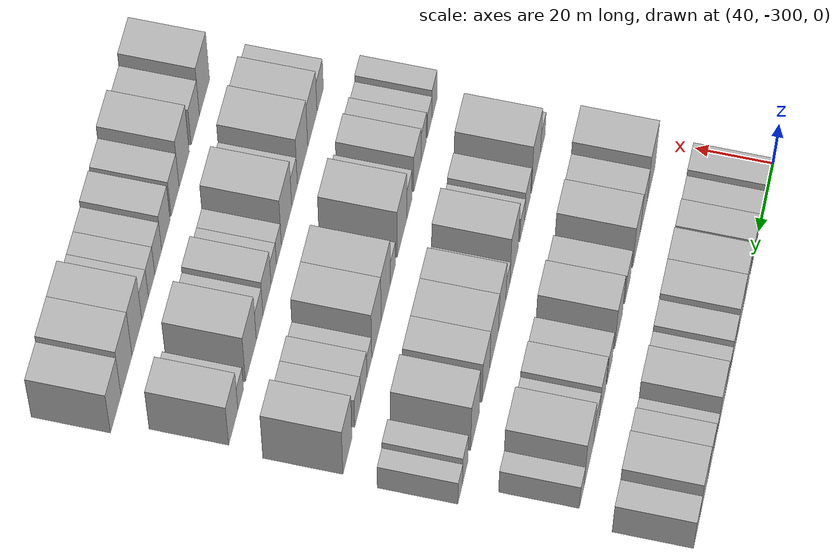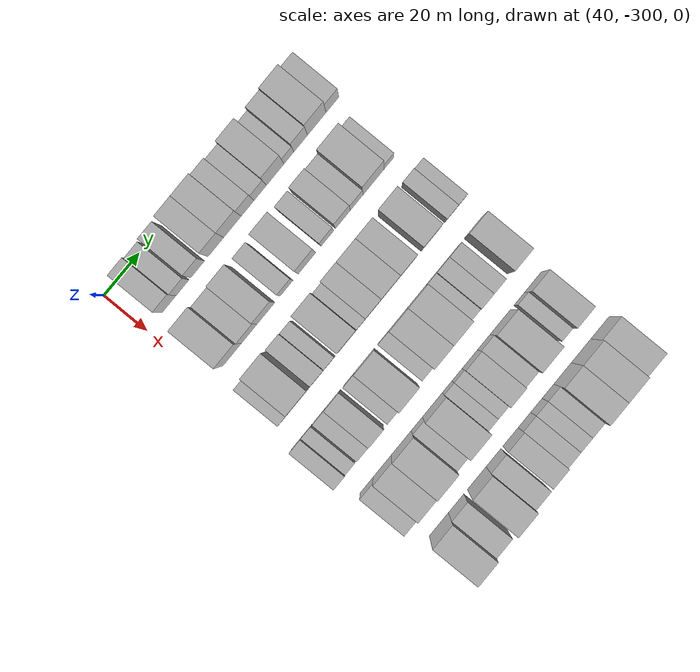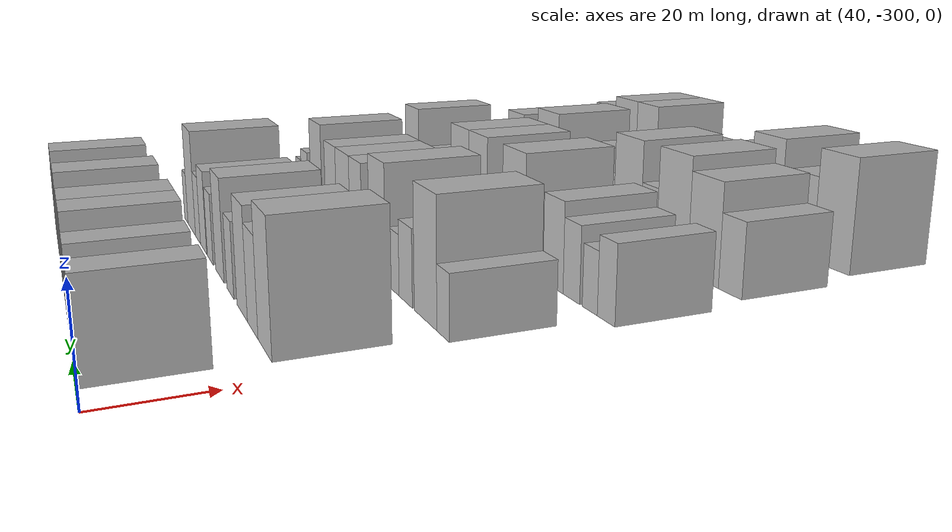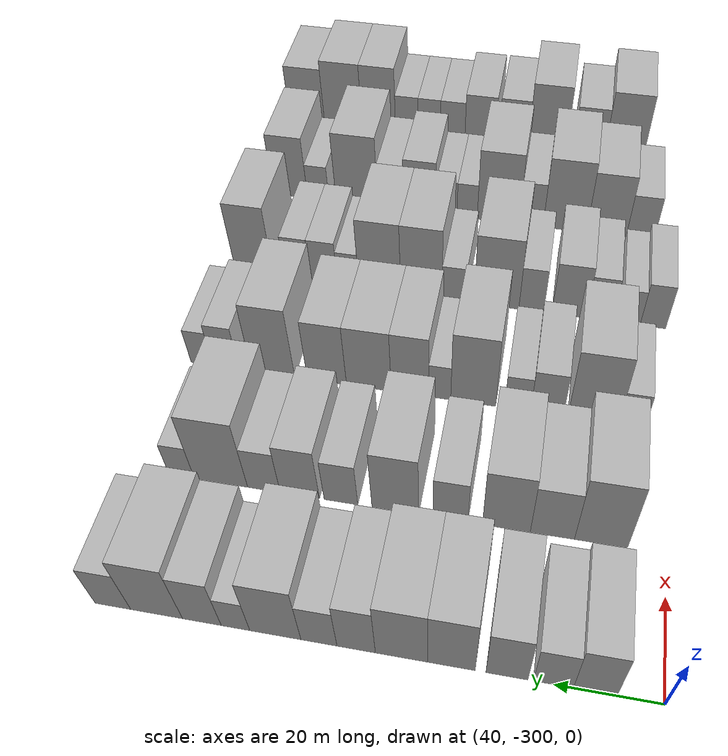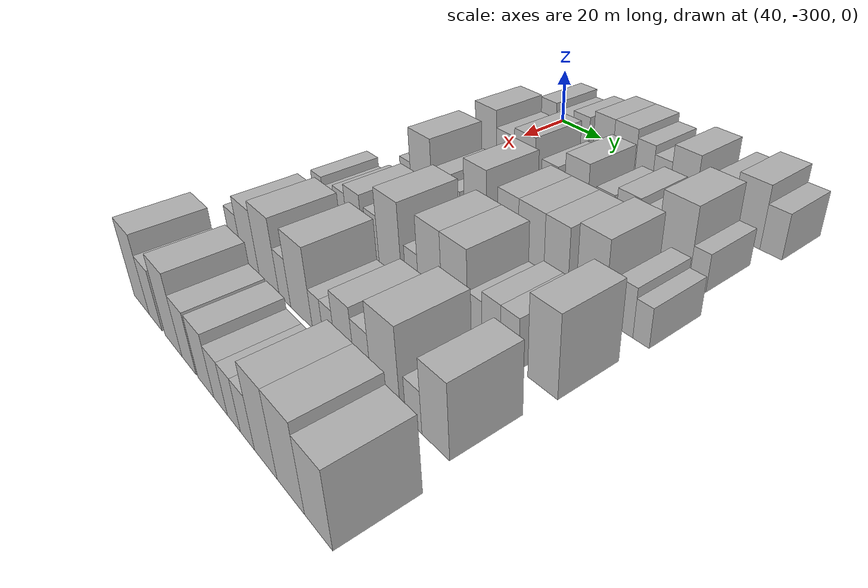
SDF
<sdf version="1.6">
 <world name="default">
  <model name="building_26">
   <static>1</static>
   <pose>50.0000 -287.5092 0 0.000000 0.000000 0.000000</pose>
   <link name="link">
    <pose>0 0 9.00 0 0 0</pose>
    <collision name="collision"><geometry><box><size>20.0000 7.8925 18.0000</size></box></geometry></collision>
    <visual name="visual">
     <cast_shadows>0</cast_shadows>
     <geometry><box><size>20.0000 7.8925 18.0000</size></box></geometry>
     <material>
      <script>
       <uri>model://HANNAS_wall/materials/scripts</uri>
       <uri>model://HANNAS_wall/materials/textures</uri>
       <name>vrc/HANNAS_wall</name>
      </script>
     </material>
    </visual>
   </link>
  </model>
  <model name="building_27">
   <static>1</static>
   <pose>50.0000 -279.9072 0 0.000000 0.000000 0.000000</pose>
   <link name="link">
    <pose>0 0 7.50 0 0 0</pose>
    <collision name="collision"><geometry><box><size>20.0000 7.3117 15.0000</size></box></geometry></collision>
    <visual name="visual">
     <cast_shadows>0</cast_shadows>
     <geometry><box><size>20.0000 7.3117 15.0000</size></box></geometry>
     <material>
      <script>
       <uri>model://HANNAS_wall/materials/scripts</uri>
       <uri>model://HANNAS_wall/materials/textures</uri>
       <name>vrc/HANNAS_wall</name>
      </script>
     </material>
    </visual>
   </link>
  </model>
  <model name="building_28">
   <static>1</static>
   <pose>50.0000 -271.3781 0 0.000000 0.000000 0.000000</pose>
   <link name="link">
    <pose>0 0 9.00 0 0 0</pose>
    <collision name="collision"><geometry><box><size>20.0000 7.7464 18.0000</size></box></geometry></collision>
    <visual name="visual">
     <cast_shadows>0</cast_shadows>
     <geometry><box><size>20.0000 7.7464 18.0000</size></box></geometry>
     <material>
      <script>
       <uri>model://HANNAS_wall/materials/scripts</uri>
       <uri>model://HANNAS_wall/materials/textures</uri>
       <name>vrc/HANNAS_wall</name>
      </script>
     </material>
    </visual>
   </link>
  </model>
  <model name="building_29">
   <static>1</static>
   <pose>50.0000 -261.0424 0 0.000000 0.000000 0.000000</pose>
   <link name="link">
    <pose>0 0 10.50 0 0 0</pose>
    <collision name="collision"><geometry><box><size>20.0000 8.9250 21.0000</size></box></geometry></collision>
    <visual name="visual">
     <cast_shadows>0</cast_shadows>
     <geometry><box><size>20.0000 8.9250 21.0000</size></box></geometry>
     <material>
      <script>
       <uri>model://HANNAS_wall/materials/scripts</uri>
       <uri>model://HANNAS_wall/materials/textures</uri>
       <name>vrc/HANNAS_wall</name>
      </script>
     </material>
    </visual>
   </link>
  </model>
  <model name="building_30">
   <static>1</static>
   <pose>50.0000 -251.6607 0 0.000000 0.000000 0.000000</pose>
   <link name="link">
    <pose>0 0 10.50 0 0 0</pose>
    <collision name="collision"><geometry><box><size>20.0000 9.8384 21.0000</size></box></geometry></collision>
    <visual name="visual">
     <cast_shadows>0</cast_shadows>
     <geometry><box><size>20.0000 9.8384 21.0000</size></box></geometry>
     <material>
      <script>
       <uri>model://HANNAS_wall/materials/scripts</uri>
       <uri>model://HANNAS_wall/materials/textures</uri>
       <name>vrc/HANNAS_wall</name>
      </script>
     </material>
    </visual>
   </link>
  </model>
  <model name="building_31">
   <static>1</static>
   <pose>50.0000 -243.0680 0 0.000000 0.000000 0.000000</pose>
   <link name="link">
    <pose>0 0 9.00 0 0 0</pose>
    <collision name="collision"><geometry><box><size>20.0000 7.3471 18.0000</size></box></geometry></collision>
    <visual name="visual">
     <cast_shadows>0</cast_shadows>
     <geometry><box><size>20.0000 7.3471 18.0000</size></box></geometry>
     <material>
      <script>
       <uri>model://HANNAS_wall/materials/scripts</uri>
       <uri>model://HANNAS_wall/materials/textures</uri>
       <name>vrc/HANNAS_wall</name>
      </script>
     </material>
    </visual>
   </link>
  </model>
  <model name="building_32">
   <static>1</static>
   <pose>50.0000 -235.9176 0 0.000000 0.000000 0.000000</pose>
   <link name="link">
    <pose>0 0 7.50 0 0 0</pose>
    <collision name="collision"><geometry><box><size>20.0000 6.9537 15.0000</size></box></geometry></collision>
    <visual name="visual">
     <cast_shadows>0</cast_shadows>
     <geometry><box><size>20.0000 6.9537 15.0000</size></box></geometry>
     <material>
      <script>
       <uri>model://HANNAS_wall/materials/scripts</uri>
       <uri>model://HANNAS_wall/materials/textures</uri>
       <name>vrc/HANNAS_wall</name>
      </script>
     </material>
    </visual>
   </link>
  </model>
  <model name="building_33">
   <static>1</static>
   <pose>50.0000 -227.4500 0 0.000000 0.000000 0.000000</pose>
   <link name="link">
    <pose>0 0 10.50 0 0 0</pose>
    <collision name="collision"><geometry><box><size>20.0000 9.9816 21.0000</size></box></geometry></collision>
    <visual name="visual">
     <cast_shadows>0</cast_shadows>
     <geometry><box><size>20.0000 9.9816 21.0000</size></box></geometry>
     <material>
      <script>
       <uri>model://HANNAS_wall/materials/scripts</uri>
       <uri>model://HANNAS_wall/materials/textures</uri>
       <name>vrc/HANNAS_wall</name>
      </script>
     </material>
    </visual>
   </link>
  </model>
  <model name="building_34">
   <static>1</static>
   <pose>50.0000 -219.6462 0 0.000000 0.000000 0.000000</pose>
   <link name="link">
    <pose>0 0 6.00 0 0 0</pose>
    <collision name="collision"><geometry><box><size>20.0000 5.6259 12.0000</size></box></geometry></collision>
    <visual name="visual">
     <cast_shadows>0</cast_shadows>
     <geometry><box><size>20.0000 5.6259 12.0000</size></box></geometry>
     <material>
      <script>
       <uri>model://HANNAS_wall/materials/scripts</uri>
       <uri>model://HANNAS_wall/materials/textures</uri>
       <name>vrc/HANNAS_wall</name>
      </script>
     </material>
    </visual>
   </link>
  </model>
  <model name="building_35">
   <static>1</static>
   <pose>50.0000 -212.9901 0 0.000000 0.000000 0.000000</pose>
   <link name="link">
    <pose>0 0 9.00 0 0 0</pose>
    <collision name="collision"><geometry><box><size>20.0000 7.6864 18.0000</size></box></geometry></collision>
    <visual name="visual">
     <cast_shadows>0</cast_shadows>
     <geometry><box><size>20.0000 7.6864 18.0000</size></box></geometry>
     <material>
      <script>
       <uri>model://HANNAS_wall/materials/scripts</uri>
       <uri>model://HANNAS_wall/materials/textures</uri>
       <name>vrc/HANNAS_wall</name>
      </script>
     </material>
    </visual>
   </link>
  </model>
  <model name="building_36">
   <static>1</static>
   <pose>50.0000 -203.9305 0 0.000000 0.000000 0.000000</pose>
   <link name="link">
    <pose>0 0 10.50 0 0 0</pose>
    <collision name="collision"><geometry><box><size>20.0000 10.4330 21.0000</size></box></geometry></collision>
    <visual name="visual">
     <cast_shadows>0</cast_shadows>
     <geometry><box><size>20.0000 10.4330 21.0000</size></box></geometry>
     <material>
      <script>
       <uri>model://HANNAS_wall/materials/scripts</uri>
       <uri>model://HANNAS_wall/materials/textures</uri>
       <name>vrc/HANNAS_wall</name>
      </script>
     </material>
    </visual>
   </link>
  </model>
  <model name="building_37">
   <static>1</static>
   <pose>50.0000 -195.0997 0 0.000000 0.000000 0.000000</pose>
   <link name="link">
    <pose>0 0 7.50 0 0 0</pose>
    <collision name="collision"><geometry><box><size>20.0000 7.2284 15.0000</size></box></geometry></collision>
    <visual name="visual">
     <cast_shadows>0</cast_shadows>
     <geometry><box><size>20.0000 7.2284 15.0000</size></box></geometry>
     <material>
      <script>
       <uri>model://HANNAS_wall/materials/scripts</uri>
       <uri>model://HANNAS_wall/materials/textures</uri>
       <name>vrc/HANNAS_wall</name>
      </script>
     </material>
    </visual>
   </link>
  </model>
  <model name="building_143">
   <static>1</static>
   <pose>79.0000 -287.1004 0 0.000000 0.000000 0.000000</pose>
   <link name="link">
    <pose>0 0 12.00 0 0 0</pose>
    <collision name="collision"><geometry><box><size>20.0000 10.6587 24.0000</size></box></geometry></collision>
    <visual name="visual">
     <cast_shadows>0</cast_shadows>
     <geometry><box><size>20.0000 10.6587 24.0000</size></box></geometry>
     <material>
      <script>
       <uri>model://HANNAS_wall/materials/scripts</uri>
       <uri>model://HANNAS_wall/materials/textures</uri>
       <name>vrc/HANNAS_wall</name>
      </script>
     </material>
    </visual>
   </link>
  </model>
  <model name="building_144">
   <static>1</static>
   <pose>79.0000 -277.2803 0 0.000000 0.000000 0.000000</pose>
   <link name="link">
    <pose>0 0 9.00 0 0 0</pose>
    <collision name="collision"><geometry><box><size>20.0000 8.9815 18.0000</size></box></geometry></collision>
    <visual name="visual">
     <cast_shadows>0</cast_shadows>
     <geometry><box><size>20.0000 8.9815 18.0000</size></box></geometry>
     <material>
      <script>
       <uri>model://HANNAS_wall/materials/scripts</uri>
       <uri>model://HANNAS_wall/materials/textures</uri>
       <name>vrc/HANNAS_wall</name>
      </script>
     </material>
    </visual>
   </link>
  </model>
  <model name="building_145">
   <static>1</static>
   <pose>79.0000 -267.8952 0 0.000000 0.000000 0.000000</pose>
   <link name="link">
    <pose>0 0 10.50 0 0 0</pose>
    <collision name="collision"><geometry><box><size>20.0000 9.7886 21.0000</size></box></geometry></collision>
    <visual name="visual">
     <cast_shadows>0</cast_shadows>
     <geometry><box><size>20.0000 9.7886 21.0000</size></box></geometry>
     <material>
      <script>
       <uri>model://HANNAS_wall/materials/scripts</uri>
       <uri>model://HANNAS_wall/materials/textures</uri>
       <name>vrc/HANNAS_wall</name>
      </script>
     </material>
    </visual>
   </link>
  </model>
  <model name="building_146">
   <static>1</static>
   <pose>79.0000 -256.3727 0 0.000000 0.000000 0.000000</pose>
   <link name="link">
    <pose>0 0 7.50 0 0 0</pose>
    <collision name="collision"><geometry><box><size>20.0000 7.2565 15.0000</size></box></geometry></collision>
    <visual name="visual">
     <cast_shadows>0</cast_shadows>
     <geometry><box><size>20.0000 7.2565 15.0000</size></box></geometry>
     <material>
      <script>
       <uri>model://HANNAS_wall/materials/scripts</uri>
       <uri>model://HANNAS_wall/materials/textures</uri>
       <name>vrc/HANNAS_wall</name>
      </script>
     </material>
    </visual>
   </link>
  </model>
  <model name="building_147">
   <static>1</static>
   <pose>79.0000 -244.8268 0 0.000000 0.000000 0.000000</pose>
   <link name="link">
    <pose>0 0 10.50 0 0 0</pose>
    <collision name="collision"><geometry><box><size>20.0000 9.8353 21.0000</size></box></geometry></collision>
    <visual name="visual">
     <cast_shadows>0</cast_shadows>
     <geometry><box><size>20.0000 9.8353 21.0000</size></box></geometry>
     <material>
      <script>
       <uri>model://HANNAS_wall/materials/scripts</uri>
       <uri>model://HANNAS_wall/materials/textures</uri>
       <name>vrc/HANNAS_wall</name>
      </script>
     </material>
    </visual>
   </link>
  </model>
  <model name="building_148">
   <static>1</static>
   <pose>79.0000 -233.3173 0 0.000000 0.000000 0.000000</pose>
   <link name="link">
    <pose>0 0 7.50 0 0 0</pose>
    <collision name="collision"><geometry><box><size>20.0000 7.1836 15.0000</size></box></geometry></collision>
    <visual name="visual">
     <cast_shadows>0</cast_shadows>
     <geometry><box><size>20.0000 7.1836 15.0000</size></box></geometry>
     <material>
      <script>
       <uri>model://HANNAS_wall/materials/scripts</uri>
       <uri>model://HANNAS_wall/materials/textures</uri>
       <name>vrc/HANNAS_wall</name>
      </script>
     </material>
    </visual>
   </link>
  </model>
  <model name="building_149">
   <static>1</static>
   <pose>79.0000 -224.4920 0 0.000000 0.000000 0.000000</pose>
   <link name="link">
    <pose>0 0 9.00 0 0 0</pose>
    <collision name="collision"><geometry><box><size>20.0000 8.4671 18.0000</size></box></geometry></collision>
    <visual name="visual">
     <cast_shadows>0</cast_shadows>
     <geometry><box><size>20.0000 8.4671 18.0000</size></box></geometry>
     <material>
      <script>
       <uri>model://HANNAS_wall/materials/scripts</uri>
       <uri>model://HANNAS_wall/materials/textures</uri>
       <name>vrc/HANNAS_wall</name>
      </script>
     </material>
    </visual>
   </link>
  </model>
  <model name="building_150">
   <static>1</static>
   <pose>79.0000 -216.7056 0 0.000000 0.000000 0.000000</pose>
   <link name="link">
    <pose>0 0 7.50 0 0 0</pose>
    <collision name="collision"><geometry><box><size>20.0000 7.1057 15.0000</size></box></geometry></collision>
    <visual name="visual">
     <cast_shadows>0</cast_shadows>
     <geometry><box><size>20.0000 7.1057 15.0000</size></box></geometry>
     <material>
      <script>
       <uri>model://HANNAS_wall/materials/scripts</uri>
       <uri>model://HANNAS_wall/materials/textures</uri>
       <name>vrc/HANNAS_wall</name>
      </script>
     </material>
    </visual>
   </link>
  </model>
  <model name="building_151">
   <static>1</static>
   <pose>79.0000 -207.3092 0 0.000000 0.000000 0.000000</pose>
   <link name="link">
    <pose>0 0 12.00 0 0 0</pose>
    <collision name="collision"><geometry><box><size>20.0000 11.6872 24.0000</size></box></geometry></collision>
    <visual name="visual">
     <cast_shadows>0</cast_shadows>
     <geometry><box><size>20.0000 11.6872 24.0000</size></box></geometry>
     <material>
      <script>
       <uri>model://HANNAS_wall/materials/scripts</uri>
       <uri>model://HANNAS_wall/materials/textures</uri>
       <name>vrc/HANNAS_wall</name>
      </script>
     </material>
    </visual>
   </link>
  </model>
  <model name="building_152">
   <static>1</static>
   <pose>79.0000 -198.6663 0 0.000000 0.000000 0.000000</pose>
   <link name="link">
    <pose>0 0 6.00 0 0 0</pose>
    <collision name="collision"><geometry><box><size>20.0000 5.5985 12.0000</size></box></geometry></collision>
    <visual name="visual">
     <cast_shadows>0</cast_shadows>
     <geometry><box><size>20.0000 5.5985 12.0000</size></box></geometry>
     <material>
      <script>
       <uri>model://HANNAS_wall/materials/scripts</uri>
       <uri>model://HANNAS_wall/materials/textures</uri>
       <name>vrc/HANNAS_wall</name>
      </script>
     </material>
    </visual>
   </link>
  </model>
  <model name="building_255">
   <static>1</static>
   <pose>108.0000 -292.4442 0 0.000000 0.000000 0.000000</pose>
   <link name="link">
    <pose>0 0 6.00 0 0 0</pose>
    <collision name="collision"><geometry><box><size>20.0000 5.7419 12.0000</size></box></geometry></collision>
    <visual name="visual">
     <cast_shadows>0</cast_shadows>
     <geometry><box><size>20.0000 5.7419 12.0000</size></box></geometry>
     <material>
      <script>
       <uri>model://HANNAS_wall/materials/scripts</uri>
       <uri>model://HANNAS_wall/materials/textures</uri>
       <name>vrc/HANNAS_wall</name>
      </script>
     </material>
    </visual>
   </link>
  </model>
  <model name="building_256">
   <static>1</static>
   <pose>108.0000 -283.9402 0 0.000000 0.000000 0.000000</pose>
   <link name="link">
    <pose>0 0 12.00 0 0 0</pose>
    <collision name="collision"><geometry><box><size>20.0000 11.2659 24.0000</size></box></geometry></collision>
    <visual name="visual">
     <cast_shadows>0</cast_shadows>
     <geometry><box><size>20.0000 11.2659 24.0000</size></box></geometry>
     <material>
      <script>
       <uri>model://HANNAS_wall/materials/scripts</uri>
       <uri>model://HANNAS_wall/materials/textures</uri>
       <name>vrc/HANNAS_wall</name>
      </script>
     </material>
    </visual>
   </link>
  </model>
  <model name="building_257">
   <static>1</static>
   <pose>108.0000 -273.6493 0 0.000000 0.000000 0.000000</pose>
   <link name="link">
    <pose>0 0 7.50 0 0 0</pose>
    <collision name="collision"><geometry><box><size>20.0000 7.3159 15.0000</size></box></geometry></collision>
    <visual name="visual">
     <cast_shadows>0</cast_shadows>
     <geometry><box><size>20.0000 7.3159 15.0000</size></box></geometry>
     <material>
      <script>
       <uri>model://HANNAS_wall/materials/scripts</uri>
       <uri>model://HANNAS_wall/materials/textures</uri>
       <name>vrc/HANNAS_wall</name>
      </script>
     </material>
    </visual>
   </link>
  </model>
  <model name="building_258">
   <static>1</static>
   <pose>108.0000 -267.0643 0 0.000000 0.000000 0.000000</pose>
   <link name="link">
    <pose>0 0 6.00 0 0 0</pose>
    <collision name="collision"><geometry><box><size>20.0000 5.8540 12.0000</size></box></geometry></collision>
    <visual name="visual">
     <cast_shadows>0</cast_shadows>
     <geometry><box><size>20.0000 5.8540 12.0000</size></box></geometry>
     <material>
      <script>
       <uri>model://HANNAS_wall/materials/scripts</uri>
       <uri>model://HANNAS_wall/materials/textures</uri>
       <name>vrc/HANNAS_wall</name>
      </script>
     </material>
    </visual>
   </link>
  </model>
  <model name="building_259">
   <static>1</static>
   <pose>108.0000 -257.0201 0 0.000000 0.000000 0.000000</pose>
   <link name="link">
    <pose>0 0 12.00 0 0 0</pose>
    <collision name="collision"><geometry><box><size>20.0000 10.2344 24.0000</size></box></geometry></collision>
    <visual name="visual">
     <cast_shadows>0</cast_shadows>
     <geometry><box><size>20.0000 10.2344 24.0000</size></box></geometry>
     <material>
      <script>
       <uri>model://HANNAS_wall/materials/scripts</uri>
       <uri>model://HANNAS_wall/materials/textures</uri>
       <name>vrc/HANNAS_wall</name>
      </script>
     </material>
    </visual>
   </link>
  </model>
  <model name="building_260">
   <static>1</static>
   <pose>108.0000 -249.3793 0 0.000000 0.000000 0.000000</pose>
   <link name="link">
    <pose>0 0 6.00 0 0 0</pose>
    <collision name="collision"><geometry><box><size>20.0000 5.0472 12.0000</size></box></geometry></collision>
    <visual name="visual">
     <cast_shadows>0</cast_shadows>
     <geometry><box><size>20.0000 5.0472 12.0000</size></box></geometry>
     <material>
      <script>
       <uri>model://HANNAS_wall/materials/scripts</uri>
       <uri>model://HANNAS_wall/materials/textures</uri>
       <name>vrc/HANNAS_wall</name>
      </script>
     </material>
    </visual>
   </link>
  </model>
  <model name="building_261">
   <static>1</static>
   <pose>108.0000 -242.5426 0 0.000000 0.000000 0.000000</pose>
   <link name="link">
    <pose>0 0 10.50 0 0 0</pose>
    <collision name="collision"><geometry><box><size>20.0000 8.6262 21.0000</size></box></geometry></collision>
    <visual name="visual">
     <cast_shadows>0</cast_shadows>
     <geometry><box><size>20.0000 8.6262 21.0000</size></box></geometry>
     <material>
      <script>
       <uri>model://HANNAS_wall/materials/scripts</uri>
       <uri>model://HANNAS_wall/materials/textures</uri>
       <name>vrc/HANNAS_wall</name>
      </script>
     </material>
    </visual>
   </link>
  </model>
  <model name="building_262">
   <static>1</static>
   <pose>108.0000 -233.0010 0 0.000000 0.000000 0.000000</pose>
   <link name="link">
    <pose>0 0 10.50 0 0 0</pose>
    <collision name="collision"><geometry><box><size>20.0000 10.4570 21.0000</size></box></geometry></collision>
    <visual name="visual">
     <cast_shadows>0</cast_shadows>
     <geometry><box><size>20.0000 10.4570 21.0000</size></box></geometry>
     <material>
      <script>
       <uri>model://HANNAS_wall/materials/scripts</uri>
       <uri>model://HANNAS_wall/materials/textures</uri>
       <name>vrc/HANNAS_wall</name>
      </script>
     </material>
    </visual>
   </link>
  </model>
  <model name="building_263">
   <static>1</static>
   <pose>108.0000 -223.1698 0 0.000000 0.000000 0.000000</pose>
   <link name="link">
    <pose>0 0 10.50 0 0 0</pose>
    <collision name="collision"><geometry><box><size>20.0000 9.2053 21.0000</size></box></geometry></collision>
    <visual name="visual">
     <cast_shadows>0</cast_shadows>
     <geometry><box><size>20.0000 9.2053 21.0000</size></box></geometry>
     <material>
      <script>
       <uri>model://HANNAS_wall/materials/scripts</uri>
       <uri>model://HANNAS_wall/materials/textures</uri>
       <name>vrc/HANNAS_wall</name>
      </script>
     </material>
    </visual>
   </link>
  </model>
  <model name="building_264">
   <static>1</static>
   <pose>108.0000 -210.3973 0 0.000000 0.000000 0.000000</pose>
   <link name="link">
    <pose>0 0 12.00 0 0 0</pose>
    <collision name="collision"><geometry><box><size>20.0000 10.3398 24.0000</size></box></geometry></collision>
    <visual name="visual">
     <cast_shadows>0</cast_shadows>
     <geometry><box><size>20.0000 10.3398 24.0000</size></box></geometry>
     <material>
      <script>
       <uri>model://HANNAS_wall/materials/scripts</uri>
       <uri>model://HANNAS_wall/materials/textures</uri>
       <name>vrc/HANNAS_wall</name>
      </script>
     </material>
    </visual>
   </link>
  </model>
  <model name="building_265">
   <static>1</static>
   <pose>108.0000 -199.0351 0 0.000000 0.000000 0.000000</pose>
   <link name="link">
    <pose>0 0 7.50 0 0 0</pose>
    <collision name="collision"><geometry><box><size>20.0000 6.3846 15.0000</size></box></geometry></collision>
    <visual name="visual">
     <cast_shadows>0</cast_shadows>
     <geometry><box><size>20.0000 6.3846 15.0000</size></box></geometry>
     <material>
      <script>
       <uri>model://HANNAS_wall/materials/scripts</uri>
       <uri>model://HANNAS_wall/materials/textures</uri>
       <name>vrc/HANNAS_wall</name>
      </script>
     </material>
    </visual>
   </link>
  </model>
  <model name="building_266">
   <static>1</static>
   <pose>108.0000 -193.2231 0 0.000000 0.000000 0.000000</pose>
   <link name="link">
    <pose>0 0 6.00 0 0 0</pose>
    <collision name="collision"><geometry><box><size>20.0000 5.2395 12.0000</size></box></geometry></collision>
    <visual name="visual">
     <cast_shadows>0</cast_shadows>
     <geometry><box><size>20.0000 5.2395 12.0000</size></box></geometry>
     <material>
      <script>
       <uri>model://HANNAS_wall/materials/scripts</uri>
       <uri>model://HANNAS_wall/materials/textures</uri>
       <name>vrc/HANNAS_wall</name>
      </script>
     </material>
    </visual>
   </link>
  </model>
  <model name="building_368">
   <static>1</static>
   <pose>137.0000 -296.6412 0 0.000000 0.000000 0.000000</pose>
   <link name="link">
    <pose>0 0 7.50 0 0 0</pose>
    <collision name="collision"><geometry><box><size>20.0000 6.0902 15.0000</size></box></geometry></collision>
    <visual name="visual">
     <cast_shadows>0</cast_shadows>
     <geometry><box><size>20.0000 6.0902 15.0000</size></box></geometry>
     <material>
      <script>
       <uri>model://HANNAS_wall/materials/scripts</uri>
       <uri>model://HANNAS_wall/materials/textures</uri>
       <name>vrc/HANNAS_wall</name>
      </script>
     </material>
    </visual>
   </link>
  </model>
  <model name="building_369">
   <static>1</static>
   <pose>137.0000 -290.8589 0 0.000000 0.000000 0.000000</pose>
   <link name="link">
    <pose>0 0 6.00 0 0 0</pose>
    <collision name="collision"><geometry><box><size>20.0000 5.4744 12.0000</size></box></geometry></collision>
    <visual name="visual">
     <cast_shadows>0</cast_shadows>
     <geometry><box><size>20.0000 5.4744 12.0000</size></box></geometry>
     <material>
      <script>
       <uri>model://HANNAS_wall/materials/scripts</uri>
       <uri>model://HANNAS_wall/materials/textures</uri>
       <name>vrc/HANNAS_wall</name>
      </script>
     </material>
    </visual>
   </link>
  </model>
  <model name="building_370">
   <static>1</static>
   <pose>137.0000 -283.8934 0 0.000000 0.000000 0.000000</pose>
   <link name="link">
    <pose>0 0 7.50 0 0 0</pose>
    <collision name="collision"><geometry><box><size>20.0000 6.4567 15.0000</size></box></geometry></collision>
    <visual name="visual">
     <cast_shadows>0</cast_shadows>
     <geometry><box><size>20.0000 6.4567 15.0000</size></box></geometry>
     <material>
      <script>
       <uri>model://HANNAS_wall/materials/scripts</uri>
       <uri>model://HANNAS_wall/materials/textures</uri>
       <name>vrc/HANNAS_wall</name>
      </script>
     </material>
    </visual>
   </link>
  </model>
  <model name="building_371">
   <static>1</static>
   <pose>137.0000 -276.4920 0 0.000000 0.000000 0.000000</pose>
   <link name="link">
    <pose>0 0 9.00 0 0 0</pose>
    <collision name="collision"><geometry><box><size>20.0000 8.3462 18.0000</size></box></geometry></collision>
    <visual name="visual">
     <cast_shadows>0</cast_shadows>
     <geometry><box><size>20.0000 8.3462 18.0000</size></box></geometry>
     <material>
      <script>
       <uri>model://HANNAS_wall/materials/scripts</uri>
       <uri>model://HANNAS_wall/materials/textures</uri>
       <name>vrc/HANNAS_wall</name>
      </script>
     </material>
    </visual>
   </link>
  </model>
  <model name="building_372">
   <static>1</static>
   <pose>137.0000 -267.2804 0 0.000000 0.000000 0.000000</pose>
   <link name="link">
    <pose>0 0 7.50 0 0 0</pose>
    <collision name="collision"><geometry><box><size>20.0000 6.0770 15.0000</size></box></geometry></collision>
    <visual name="visual">
     <cast_shadows>0</cast_shadows>
     <geometry><box><size>20.0000 6.0770 15.0000</size></box></geometry>
     <material>
      <script>
       <uri>model://HANNAS_wall/materials/scripts</uri>
       <uri>model://HANNAS_wall/materials/textures</uri>
       <name>vrc/HANNAS_wall</name>
      </script>
     </material>
    </visual>
   </link>
  </model>
  <model name="building_373">
   <static>1</static>
   <pose>137.0000 -258.7001 0 0.000000 0.000000 0.000000</pose>
   <link name="link">
    <pose>0 0 12.00 0 0 0</pose>
    <collision name="collision"><geometry><box><size>20.0000 11.0838 24.0000</size></box></geometry></collision>
    <visual name="visual">
     <cast_shadows>0</cast_shadows>
     <geometry><box><size>20.0000 11.0838 24.0000</size></box></geometry>
     <material>
      <script>
       <uri>model://HANNAS_wall/materials/scripts</uri>
       <uri>model://HANNAS_wall/materials/textures</uri>
       <name>vrc/HANNAS_wall</name>
      </script>
     </material>
    </visual>
   </link>
  </model>
  <model name="building_374">
   <static>1</static>
   <pose>137.0000 -248.1717 0 0.000000 0.000000 0.000000</pose>
   <link name="link">
    <pose>0 0 6.00 0 0 0</pose>
    <collision name="collision"><geometry><box><size>20.0000 5.9730 12.0000</size></box></geometry></collision>
    <visual name="visual">
     <cast_shadows>0</cast_shadows>
     <geometry><box><size>20.0000 5.9730 12.0000</size></box></geometry>
     <material>
      <script>
       <uri>model://HANNAS_wall/materials/scripts</uri>
       <uri>model://HANNAS_wall/materials/textures</uri>
       <name>vrc/HANNAS_wall</name>
      </script>
     </material>
    </visual>
   </link>
  </model>
  <model name="building_375">
   <static>1</static>
   <pose>137.0000 -240.0196 0 0.000000 0.000000 0.000000</pose>
   <link name="link">
    <pose>0 0 12.00 0 0 0</pose>
    <collision name="collision"><geometry><box><size>20.0000 10.3311 24.0000</size></box></geometry></collision>
    <visual name="visual">
     <cast_shadows>0</cast_shadows>
     <geometry><box><size>20.0000 10.3311 24.0000</size></box></geometry>
     <material>
      <script>
       <uri>model://HANNAS_wall/materials/scripts</uri>
       <uri>model://HANNAS_wall/materials/textures</uri>
       <name>vrc/HANNAS_wall</name>
      </script>
     </material>
    </visual>
   </link>
  </model>
  <model name="building_376">
   <static>1</static>
   <pose>137.0000 -229.5438 0 0.000000 0.000000 0.000000</pose>
   <link name="link">
    <pose>0 0 12.00 0 0 0</pose>
    <collision name="collision"><geometry><box><size>20.0000 10.6205 24.0000</size></box></geometry></collision>
    <visual name="visual">
     <cast_shadows>0</cast_shadows>
     <geometry><box><size>20.0000 10.6205 24.0000</size></box></geometry>
     <material>
      <script>
       <uri>model://HANNAS_wall/materials/scripts</uri>
       <uri>model://HANNAS_wall/materials/textures</uri>
       <name>vrc/HANNAS_wall</name>
      </script>
     </material>
    </visual>
   </link>
  </model>
  <model name="building_377">
   <static>1</static>
   <pose>137.0000 -221.5035 0 0.000000 0.000000 0.000000</pose>
   <link name="link">
    <pose>0 0 6.00 0 0 0</pose>
    <collision name="collision"><geometry><box><size>20.0000 5.4601 12.0000</size></box></geometry></collision>
    <visual name="visual">
     <cast_shadows>0</cast_shadows>
     <geometry><box><size>20.0000 5.4601 12.0000</size></box></geometry>
     <material>
      <script>
       <uri>model://HANNAS_wall/materials/scripts</uri>
       <uri>model://HANNAS_wall/materials/textures</uri>
       <name>vrc/HANNAS_wall</name>
      </script>
     </material>
    </visual>
   </link>
  </model>
  <model name="building_378">
   <static>1</static>
   <pose>137.0000 -215.3006 0 0.000000 0.000000 0.000000</pose>
   <link name="link">
    <pose>0 0 7.50 0 0 0</pose>
    <collision name="collision"><geometry><box><size>20.0000 6.9456 15.0000</size></box></geometry></collision>
    <visual name="visual">
     <cast_shadows>0</cast_shadows>
     <geometry><box><size>20.0000 6.9456 15.0000</size></box></geometry>
     <material>
      <script>
       <uri>model://HANNAS_wall/materials/scripts</uri>
       <uri>model://HANNAS_wall/materials/textures</uri>
       <name>vrc/HANNAS_wall</name>
      </script>
     </material>
    </visual>
   </link>
  </model>
  <model name="building_379">
   <static>1</static>
   <pose>137.0000 -208.5251 0 0.000000 0.000000 0.000000</pose>
   <link name="link">
    <pose>0 0 7.50 0 0 0</pose>
    <collision name="collision"><geometry><box><size>20.0000 6.6054 15.0000</size></box></geometry></collision>
    <visual name="visual">
     <cast_shadows>0</cast_shadows>
     <geometry><box><size>20.0000 6.6054 15.0000</size></box></geometry>
     <material>
      <script>
       <uri>model://HANNAS_wall/materials/scripts</uri>
       <uri>model://HANNAS_wall/materials/textures</uri>
       <name>vrc/HANNAS_wall</name>
      </script>
     </material>
    </visual>
   </link>
  </model>
  <model name="building_380">
   <static>1</static>
   <pose>137.0000 -197.2569 0 0.000000 0.000000 0.000000</pose>
   <link name="link">
    <pose>0 0 12.00 0 0 0</pose>
    <collision name="collision"><geometry><box><size>20.0000 9.9311 24.0000</size></box></geometry></collision>
    <visual name="visual">
     <cast_shadows>0</cast_shadows>
     <geometry><box><size>20.0000 9.9311 24.0000</size></box></geometry>
     <material>
      <script>
       <uri>model://HANNAS_wall/materials/scripts</uri>
       <uri>model://HANNAS_wall/materials/textures</uri>
       <name>vrc/HANNAS_wall</name>
      </script>
     </material>
    </visual>
   </link>
  </model>
  <model name="building_493">
   <static>1</static>
   <pose>166.0000 -292.9249 0 0.000000 0.000000 0.000000</pose>
   <link name="link">
    <pose>0 0 7.50 0 0 0</pose>
    <collision name="collision"><geometry><box><size>20.0000 7.2164 15.0000</size></box></geometry></collision>
    <visual name="visual">
     <cast_shadows>0</cast_shadows>
     <geometry><box><size>20.0000 7.2164 15.0000</size></box></geometry>
     <material>
      <script>
       <uri>model://HANNAS_wall/materials/scripts</uri>
       <uri>model://HANNAS_wall/materials/textures</uri>
       <name>vrc/HANNAS_wall</name>
      </script>
     </material>
    </visual>
   </link>
  </model>
  <model name="building_494">
   <static>1</static>
   <pose>166.0000 -284.1617 0 0.000000 0.000000 0.000000</pose>
   <link name="link">
    <pose>0 0 10.50 0 0 0</pose>
    <collision name="collision"><geometry><box><size>20.0000 10.3100 21.0000</size></box></geometry></collision>
    <visual name="visual">
     <cast_shadows>0</cast_shadows>
     <geometry><box><size>20.0000 10.3100 21.0000</size></box></geometry>
     <material>
      <script>
       <uri>model://HANNAS_wall/materials/scripts</uri>
       <uri>model://HANNAS_wall/materials/textures</uri>
       <name>vrc/HANNAS_wall</name>
      </script>
     </material>
    </visual>
   </link>
  </model>
  <model name="building_495">
   <static>1</static>
   <pose>166.0000 -273.2722 0 0.000000 0.000000 0.000000</pose>
   <link name="link">
    <pose>0 0 12.00 0 0 0</pose>
    <collision name="collision"><geometry><box><size>20.0000 11.4690 24.0000</size></box></geometry></collision>
    <visual name="visual">
     <cast_shadows>0</cast_shadows>
     <geometry><box><size>20.0000 11.4690 24.0000</size></box></geometry>
     <material>
      <script>
       <uri>model://HANNAS_wall/materials/scripts</uri>
       <uri>model://HANNAS_wall/materials/textures</uri>
       <name>vrc/HANNAS_wall</name>
      </script>
     </material>
    </visual>
   </link>
  </model>
  <model name="building_496">
   <static>1</static>
   <pose>166.0000 -264.4028 0 0.000000 0.000000 0.000000</pose>
   <link name="link">
    <pose>0 0 7.50 0 0 0</pose>
    <collision name="collision"><geometry><box><size>20.0000 6.2698 15.0000</size></box></geometry></collision>
    <visual name="visual">
     <cast_shadows>0</cast_shadows>
     <geometry><box><size>20.0000 6.2698 15.0000</size></box></geometry>
     <material>
      <script>
       <uri>model://HANNAS_wall/materials/scripts</uri>
       <uri>model://HANNAS_wall/materials/textures</uri>
       <name>vrc/HANNAS_wall</name>
      </script>
     </material>
    </visual>
   </link>
  </model>
  <model name="building_497">
   <static>1</static>
   <pose>166.0000 -255.6284 0 0.000000 0.000000 0.000000</pose>
   <link name="link">
    <pose>0 0 12.00 0 0 0</pose>
    <collision name="collision"><geometry><box><size>20.0000 11.2791 24.0000</size></box></geometry></collision>
    <visual name="visual">
     <cast_shadows>0</cast_shadows>
     <geometry><box><size>20.0000 11.2791 24.0000</size></box></geometry>
     <material>
      <script>
       <uri>model://HANNAS_wall/materials/scripts</uri>
       <uri>model://HANNAS_wall/materials/textures</uri>
       <name>vrc/HANNAS_wall</name>
      </script>
     </material>
    </visual>
   </link>
  </model>
  <model name="building_498">
   <static>1</static>
   <pose>166.0000 -247.2553 0 0.000000 0.000000 0.000000</pose>
   <link name="link">
    <pose>0 0 6.00 0 0 0</pose>
    <collision name="collision"><geometry><box><size>20.0000 5.4670 12.0000</size></box></geometry></collision>
    <visual name="visual">
     <cast_shadows>0</cast_shadows>
     <geometry><box><size>20.0000 5.4670 12.0000</size></box></geometry>
     <material>
      <script>
       <uri>model://HANNAS_wall/materials/scripts</uri>
       <uri>model://HANNAS_wall/materials/textures</uri>
       <name>vrc/HANNAS_wall</name>
      </script>
     </material>
    </visual>
   </link>
  </model>
  <model name="building_499">
   <static>1</static>
   <pose>166.0000 -241.6460 0 0.000000 0.000000 0.000000</pose>
   <link name="link">
    <pose>0 0 6.00 0 0 0</pose>
    <collision name="collision"><geometry><box><size>20.0000 5.7516 12.0000</size></box></geometry></collision>
    <visual name="visual">
     <cast_shadows>0</cast_shadows>
     <geometry><box><size>20.0000 5.7516 12.0000</size></box></geometry>
     <material>
      <script>
       <uri>model://HANNAS_wall/materials/scripts</uri>
       <uri>model://HANNAS_wall/materials/textures</uri>
       <name>vrc/HANNAS_wall</name>
      </script>
     </material>
    </visual>
   </link>
  </model>
  <model name="building_500">
   <static>1</static>
   <pose>166.0000 -234.4297 0 0.000000 0.000000 0.000000</pose>
   <link name="link">
    <pose>0 0 9.00 0 0 0</pose>
    <collision name="collision"><geometry><box><size>20.0000 8.6812 18.0000</size></box></geometry></collision>
    <visual name="visual">
     <cast_shadows>0</cast_shadows>
     <geometry><box><size>20.0000 8.6812 18.0000</size></box></geometry>
     <material>
      <script>
       <uri>model://HANNAS_wall/materials/scripts</uri>
       <uri>model://HANNAS_wall/materials/textures</uri>
       <name>vrc/HANNAS_wall</name>
      </script>
     </material>
    </visual>
   </link>
  </model>
  <model name="building_501">
   <static>1</static>
   <pose>166.0000 -226.5294 0 0.000000 0.000000 0.000000</pose>
   <link name="link">
    <pose>0 0 7.50 0 0 0</pose>
    <collision name="collision"><geometry><box><size>20.0000 7.1192 15.0000</size></box></geometry></collision>
    <visual name="visual">
     <cast_shadows>0</cast_shadows>
     <geometry><box><size>20.0000 7.1192 15.0000</size></box></geometry>
     <material>
      <script>
       <uri>model://HANNAS_wall/materials/scripts</uri>
       <uri>model://HANNAS_wall/materials/textures</uri>
       <name>vrc/HANNAS_wall</name>
      </script>
     </material>
    </visual>
   </link>
  </model>
  <model name="building_502">
   <static>1</static>
   <pose>166.0000 -217.2152 0 0.000000 0.000000 0.000000</pose>
   <link name="link">
    <pose>0 0 12.00 0 0 0</pose>
    <collision name="collision"><geometry><box><size>20.0000 11.5093 24.0000</size></box></geometry></collision>
    <visual name="visual">
     <cast_shadows>0</cast_shadows>
     <geometry><box><size>20.0000 11.5093 24.0000</size></box></geometry>
     <material>
      <script>
       <uri>model://HANNAS_wall/materials/scripts</uri>
       <uri>model://HANNAS_wall/materials/textures</uri>
       <name>vrc/HANNAS_wall</name>
      </script>
     </material>
    </visual>
   </link>
  </model>
  <model name="building_503">
   <static>1</static>
   <pose>166.0000 -206.4910 0 0.000000 0.000000 0.000000</pose>
   <link name="link">
    <pose>0 0 6.00 0 0 0</pose>
    <collision name="collision"><geometry><box><size>20.0000 5.9391 12.0000</size></box></geometry></collision>
    <visual name="visual">
     <cast_shadows>0</cast_shadows>
     <geometry><box><size>20.0000 5.9391 12.0000</size></box></geometry>
     <material>
      <script>
       <uri>model://HANNAS_wall/materials/scripts</uri>
       <uri>model://HANNAS_wall/materials/textures</uri>
       <name>vrc/HANNAS_wall</name>
      </script>
     </material>
    </visual>
   </link>
  </model>
  <model name="building_504">
   <static>1</static>
   <pose>166.0000 -198.7050 0 0.000000 0.000000 0.000000</pose>
   <link name="link">
    <pose>0 0 10.50 0 0 0</pose>
    <collision name="collision"><geometry><box><size>20.0000 9.6329 21.0000</size></box></geometry></collision>
    <visual name="visual">
     <cast_shadows>0</cast_shadows>
     <geometry><box><size>20.0000 9.6329 21.0000</size></box></geometry>
     <material>
      <script>
       <uri>model://HANNAS_wall/materials/scripts</uri>
       <uri>model://HANNAS_wall/materials/textures</uri>
       <name>vrc/HANNAS_wall</name>
      </script>
     </material>
    </visual>
   </link>
  </model>
  <model name="building_609">
   <static>1</static>
   <pose>195.0000 -287.3410 0 0.000000 0.000000 0.000000</pose>
   <link name="link">
    <pose>0 0 12.00 0 0 0</pose>
    <collision name="collision"><geometry><box><size>20.0000 10.8020 24.0000</size></box></geometry></collision>
    <visual name="visual">
     <cast_shadows>0</cast_shadows>
     <geometry><box><size>20.0000 10.8020 24.0000</size></box></geometry>
     <material>
      <script>
       <uri>model://HANNAS_wall/materials/scripts</uri>
       <uri>model://HANNAS_wall/materials/textures</uri>
       <name>vrc/HANNAS_wall</name>
      </script>
     </material>
    </visual>
   </link>
  </model>
  <model name="building_610">
   <static>1</static>
   <pose>195.0000 -277.5726 0 0.000000 0.000000 0.000000</pose>
   <link name="link">
    <pose>0 0 9.00 0 0 0</pose>
    <collision name="collision"><geometry><box><size>20.0000 8.7348 18.0000</size></box></geometry></collision>
    <visual name="visual">
     <cast_shadows>0</cast_shadows>
     <geometry><box><size>20.0000 8.7348 18.0000</size></box></geometry>
     <material>
      <script>
       <uri>model://HANNAS_wall/materials/scripts</uri>
       <uri>model://HANNAS_wall/materials/textures</uri>
       <name>vrc/HANNAS_wall</name>
      </script>
     </material>
    </visual>
   </link>
  </model>
  <model name="building_611">
   <static>1</static>
   <pose>195.0000 -265.8860 0 0.000000 0.000000 0.000000</pose>
   <link name="link">
    <pose>0 0 12.00 0 0 0</pose>
    <collision name="collision"><geometry><box><size>20.0000 10.6384 24.0000</size></box></geometry></collision>
    <visual name="visual">
     <cast_shadows>0</cast_shadows>
     <geometry><box><size>20.0000 10.6384 24.0000</size></box></geometry>
     <material>
      <script>
       <uri>model://HANNAS_wall/materials/scripts</uri>
       <uri>model://HANNAS_wall/materials/textures</uri>
       <name>vrc/HANNAS_wall</name>
      </script>
     </material>
    </visual>
   </link>
  </model>
  <model name="building_612">
   <static>1</static>
   <pose>195.0000 -256.3719 0 0.000000 0.000000 0.000000</pose>
   <link name="link">
    <pose>0 0 9.00 0 0 0</pose>
    <collision name="collision"><geometry><box><size>20.0000 8.3897 18.0000</size></box></geometry></collision>
    <visual name="visual">
     <cast_shadows>0</cast_shadows>
     <geometry><box><size>20.0000 8.3897 18.0000</size></box></geometry>
     <material>
      <script>
       <uri>model://HANNAS_wall/materials/scripts</uri>
       <uri>model://HANNAS_wall/materials/textures</uri>
       <name>vrc/HANNAS_wall</name>
      </script>
     </material>
    </visual>
   </link>
  </model>
  <model name="building_613">
   <static>1</static>
   <pose>195.0000 -246.7848 0 0.000000 0.000000 0.000000</pose>
   <link name="link">
    <pose>0 0 9.00 0 0 0</pose>
    <collision name="collision"><geometry><box><size>20.0000 8.7846 18.0000</size></box></geometry></collision>
    <visual name="visual">
     <cast_shadows>0</cast_shadows>
     <geometry><box><size>20.0000 8.7846 18.0000</size></box></geometry>
     <material>
      <script>
       <uri>model://HANNAS_wall/materials/scripts</uri>
       <uri>model://HANNAS_wall/materials/textures</uri>
       <name>vrc/HANNAS_wall</name>
      </script>
     </material>
    </visual>
   </link>
  </model>
  <model name="building_614">
   <static>1</static>
   <pose>195.0000 -238.8605 0 0.000000 0.000000 0.000000</pose>
   <link name="link">
    <pose>0 0 7.50 0 0 0</pose>
    <collision name="collision"><geometry><box><size>20.0000 7.0640 15.0000</size></box></geometry></collision>
    <visual name="visual">
     <cast_shadows>0</cast_shadows>
     <geometry><box><size>20.0000 7.0640 15.0000</size></box></geometry>
     <material>
      <script>
       <uri>model://HANNAS_wall/materials/scripts</uri>
       <uri>model://HANNAS_wall/materials/textures</uri>
       <name>vrc/HANNAS_wall</name>
      </script>
     </material>
    </visual>
   </link>
  </model>
  <model name="building_615">
   <static>1</static>
   <pose>195.0000 -232.0983 0 0.000000 0.000000 0.000000</pose>
   <link name="link">
    <pose>0 0 7.50 0 0 0</pose>
    <collision name="collision"><geometry><box><size>20.0000 6.4604 15.0000</size></box></geometry></collision>
    <visual name="visual">
     <cast_shadows>0</cast_shadows>
     <geometry><box><size>20.0000 6.4604 15.0000</size></box></geometry>
     <material>
      <script>
       <uri>model://HANNAS_wall/materials/scripts</uri>
       <uri>model://HANNAS_wall/materials/textures</uri>
       <name>vrc/HANNAS_wall</name>
      </script>
     </material>
    </visual>
   </link>
  </model>
  <model name="building_616">
   <static>1</static>
   <pose>195.0000 -225.5486 0 0.000000 0.000000 0.000000</pose>
   <link name="link">
    <pose>0 0 7.50 0 0 0</pose>
    <collision name="collision"><geometry><box><size>20.0000 6.6391 15.0000</size></box></geometry></collision>
    <visual name="visual">
     <cast_shadows>0</cast_shadows>
     <geometry><box><size>20.0000 6.6391 15.0000</size></box></geometry>
     <material>
      <script>
       <uri>model://HANNAS_wall/materials/scripts</uri>
       <uri>model://HANNAS_wall/materials/textures</uri>
       <name>vrc/HANNAS_wall</name>
      </script>
     </material>
    </visual>
   </link>
  </model>
  <model name="building_617">
   <static>1</static>
   <pose>195.0000 -217.2552 0 0.000000 0.000000 0.000000</pose>
   <link name="link">
    <pose>0 0 12.00 0 0 0</pose>
    <collision name="collision"><geometry><box><size>20.0000 9.9477 24.0000</size></box></geometry></collision>
    <visual name="visual">
     <cast_shadows>0</cast_shadows>
     <geometry><box><size>20.0000 9.9477 24.0000</size></box></geometry>
     <material>
      <script>
       <uri>model://HANNAS_wall/materials/scripts</uri>
       <uri>model://HANNAS_wall/materials/textures</uri>
       <name>vrc/HANNAS_wall</name>
      </script>
     </material>
    </visual>
   </link>
  </model>
  <model name="building_618">
   <static>1</static>
   <pose>195.0000 -206.7476 0 0.000000 0.000000 0.000000</pose>
   <link name="link">
    <pose>0 0 12.00 0 0 0</pose>
    <collision name="collision"><geometry><box><size>20.0000 11.0676 24.0000</size></box></geometry></collision>
    <visual name="visual">
     <cast_shadows>0</cast_shadows>
     <geometry><box><size>20.0000 11.0676 24.0000</size></box></geometry>
     <material>
      <script>
       <uri>model://HANNAS_wall/materials/scripts</uri>
       <uri>model://HANNAS_wall/materials/textures</uri>
       <name>vrc/HANNAS_wall</name>
      </script>
     </material>
    </visual>
   </link>
  </model>
  <model name="building_619">
   <static>1</static>
   <pose>195.0000 -196.0077 0 0.000000 0.000000 0.000000</pose>
   <link name="link">
    <pose>0 0 10.50 0 0 0</pose>
    <collision name="collision"><geometry><box><size>20.0000 10.4121 21.0000</size></box></geometry></collision>
    <visual name="visual">
     <cast_shadows>0</cast_shadows>
     <geometry><box><size>20.0000 10.4121 21.0000</size></box></geometry>
     <material>
      <script>
       <uri>model://HANNAS_wall/materials/scripts</uri>
       <uri>model://HANNAS_wall/materials/textures</uri>
       <name>vrc/HANNAS_wall</name>
      </script>
     </material>
    </visual>
   </link>
  </model>
 </world>
</sdf>
